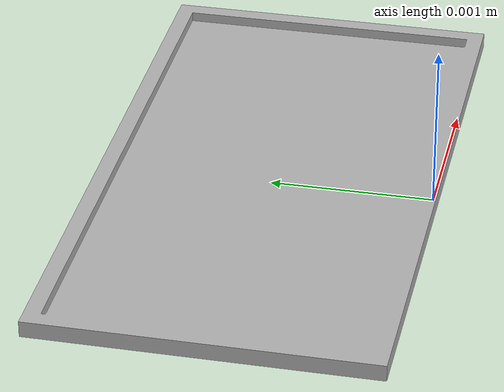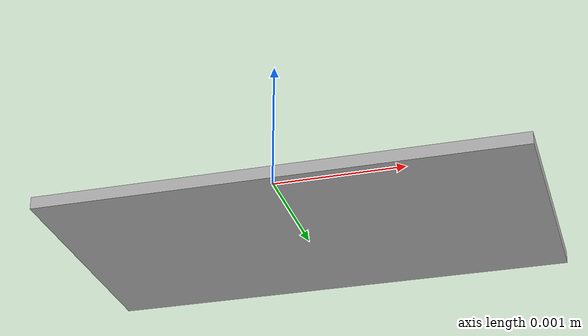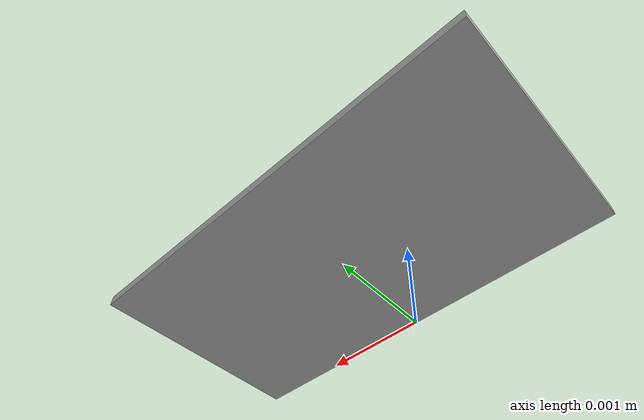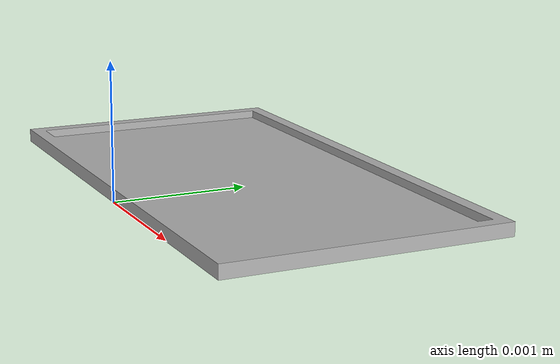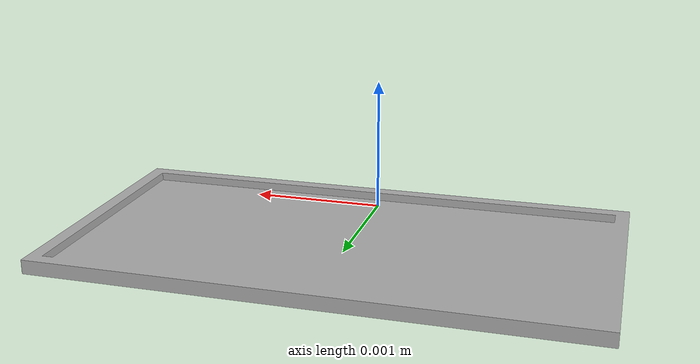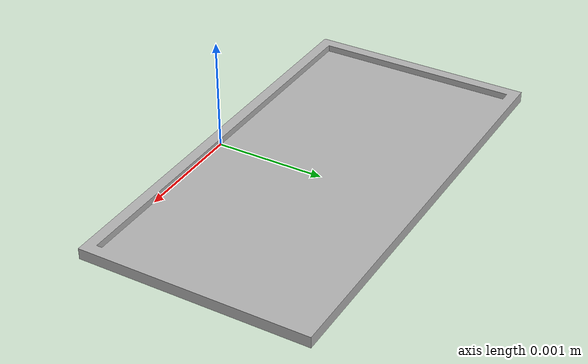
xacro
<?xml version="1.0" ?>
<robot name="Snooker_Table" xmlns:xacro="http://www.ros.org/wiki/xacro">

<xacro:include filename="$(find Snooker_Table_description)/urdf/materials.xacro" />
<xacro:include filename="$(find Snooker_Table_description)/urdf/Snooker_Table.trans" />
<xacro:include filename="$(find Snooker_Table_description)/urdf/Snooker_Table.gazebo" />
<link name="base_link">
  <inertial>
    <origin rpy="0 0 0" xyz="-3.862806199151716e-16 0.9900000000000001 0.05888116963915374"/>
    <mass value="3028.215999999999"/>
    <inertia ixx="1281.388489" ixy="0.0" ixz="-0.0" iyy="4141.779276" iyz="0.0" izz="5419.969239"/>
  </inertial>
  <visual>
    <origin rpy="0 0 0" xyz="0 0 0"/>
    <geometry>
      <mesh filename="package://Snooker_Table_description/meshes/base_link.stl" scale="0.001 0.001 0.001"/>
    </geometry>
    <material name="silver"/>
  </visual>
  <collision>
    <origin rpy="0 0 0" xyz="0 0 0"/>
    <geometry>
      <mesh filename="package://Snooker_Table_description/meshes/base_link.stl" scale="0.001 0.001 0.001"/>
    </geometry>
  </collision>
</link>

</robot>

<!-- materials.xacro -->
<robot name="Snooker_Table" xmlns:xacro="http://www.ros.org/wiki/xacro" >

<material name="silver">
  <color rgba="0.700 0.700 0.700 1.000"/>
</material>

</robot>

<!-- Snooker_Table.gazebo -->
<robot name="Snooker_Table" xmlns:xacro="http://www.ros.org/wiki/xacro" >

<xacro:property name="body_color" value="Gazebo/Silver" />

<gazebo>
  <plugin filename="libgazebo_ros_control.so" name="control"/>
</gazebo>
<gazebo reference="base_link">
  <material>${body_color}</material>
  <mu1>0.2</mu1>
  <mu2>0.2</mu2>
  <selfCollide>true</selfCollide>
  <gravity>true</gravity>
</gazebo>

</robot>
